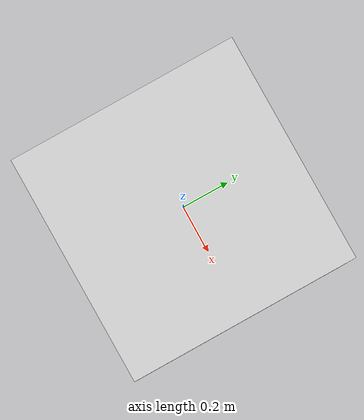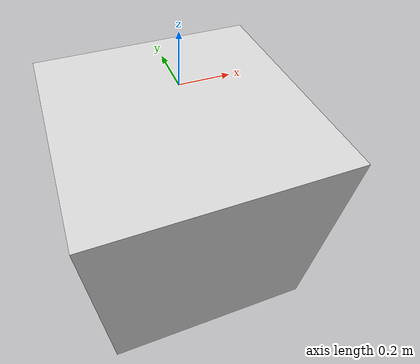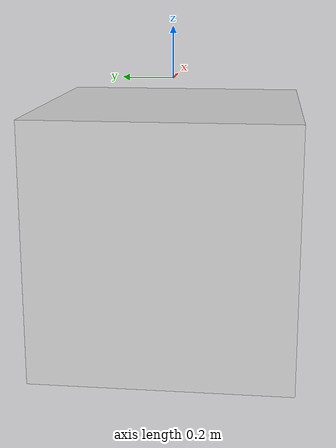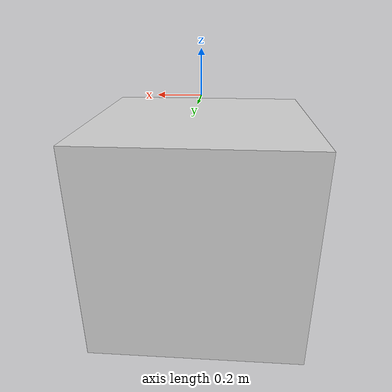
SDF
<?xml version="1.0"?>
<sdf version="1.7">
  <model name="box_y">
    <!-- The y slider will have an actuator with a corresponding input port
         in our MultibodyPlant model so that we can apply an external force.
    -->
    <joint name="y_slider" type="prismatic">
      <parent>world</parent>
      <child>box</child>
      <axis>
        <xyz>0 1 0</xyz>
        <!-- Drake attaches an actuator to all joints with a non-zero effort
             limit. We do not want an actuator for this joint. -->
        <limit>
          <effort>0</effort>
        </limit>
        <dynamics>
          <damping>50</damping>
        </dynamics>
      </axis>
    </joint>
    <!-- The model for a solid sphere of uniform density. -->
    <link name="box">
      <pose>0 0 -0.6 0 0 0</pose>
      <inertial>
        <mass>1.0</mass>
        <inertia>
          <ixx>0.004</ixx>
          <ixy>0</ixy>
          <ixz>0</ixz>
          <iyy>0.004</iyy>
          <iyz>0</iyz>
          <izz>0.004</izz>
        </inertia>
      </inertial>
      <visual name="visual">
        <geometry>
          <box>
            <size>1.0 1.0 1.0</size>
          </box>
        </geometry>
        <material>
          <diffuse>0.8 0.8 0.8 1.0</diffuse>
        </material>
      </visual>
      <collision name="collision">
        <geometry>
          <box>
            <size>1.0 1.0 1.0</size>
          </box>
        </geometry>
        <surface>
          <friction>
            <ode>
              <mu>1.0</mu>
              <mu2>1.0</mu2>
            </ode>
          </friction>
        </surface>
      </collision>
    </link>
  </model>
</sdf>
